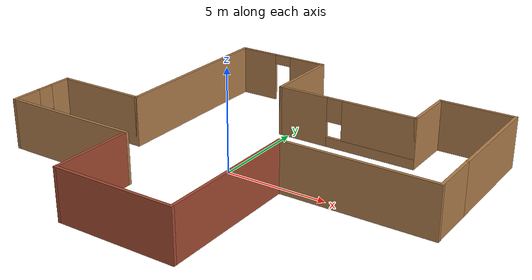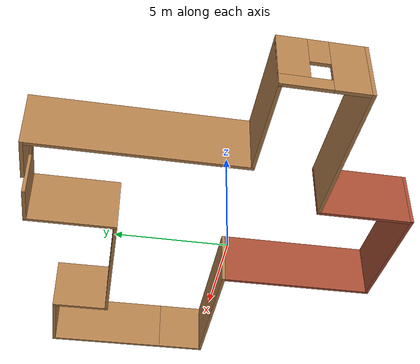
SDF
<?xml version='1.0'?>
<sdf version='1.7'>
  <model name='world'>
    <pose>0.23497 0.698898 0 0 -0 0</pose>
    <link name='Wall_10'>
      <collision name='Wall_10_Collision'>
        <geometry>
          <box>
            <size>2.75 0.15 2.5</size>
          </box>
        </geometry>
        <pose>0 0 1.25 0 -0 0</pose>
      </collision>
      <visual name='Wall_10_Visual'>
        <pose>0 0 1.25 0 -0 0</pose>
        <geometry>
          <box>
            <size>2.75 0.15 2.5</size>
          </box>
        </geometry>
        <material>
          <script>
            <uri>file://media/materials/scripts/gazebo.material</uri>
            <name>Gazebo/Wood</name>
          </script>
          <ambient>1 1 1 1</ambient>
        </material>
        <meta>
          <layer>0</layer>
        </meta>
      </visual>
      <pose>6.425 5.6 0 0 -0 1.5708</pose>
    </link>
    <link name='Wall_11'>
      <collision name='Wall_11_Collision'>
        <geometry>
          <box>
            <size>3.75 0.15 2.5</size>
          </box>
        </geometry>
        <pose>0 0 1.25 0 -0 0</pose>
      </collision>
      <visual name='Wall_11_Visual'>
        <pose>0 0 1.25 0 -0 0</pose>
        <geometry>
          <box>
            <size>3.75 0.15 2.5</size>
          </box>
        </geometry>
        <material>
          <script>
            <uri>file://media/materials/scripts/gazebo.material</uri>
            <name>Gazebo/Wood</name>
          </script>
          <ambient>1 1 1 1</ambient>
        </material>
        <meta>
          <layer>0</layer>
        </meta>
      </visual>
      <pose>8.225 6.9 0 0 -0 0</pose>
    </link>
    <link name='Wall_12'>
      <collision name='Wall_12_Collision'>
        <geometry>
          <box>
            <size>5.75 0.15 2.5</size>
          </box>
        </geometry>
        <pose>0 0 1.25 0 -0 0</pose>
      </collision>
      <visual name='Wall_12_Visual'>
        <pose>0 0 1.25 0 -0 0</pose>
        <geometry>
          <box>
            <size>5.75 0.15 2.5</size>
          </box>
        </geometry>
        <material>
          <script>
            <uri>file://media/materials/scripts/gazebo.material</uri>
            <name>Gazebo/Wood</name>
          </script>
          <ambient>1 1 1 1</ambient>
        </material>
        <meta>
          <layer>0</layer>
        </meta>
      </visual>
      <pose>10.025 4.1 0 0 -0 -1.5708</pose>
    </link>
    <link name='Wall_13'>
      <collision name='Wall_13_Collision'>
        <geometry>
          <box>
            <size>2.5 0.15 2.5</size>
          </box>
        </geometry>
        <pose>0 0 1.25 0 -0 0</pose>
      </collision>
      <visual name='Wall_13_Visual'>
        <pose>0 0 1.25 0 -0 0</pose>
        <geometry>
          <box>
            <size>2.5 0.15 2.5</size>
          </box>
        </geometry>
        <material>
          <script>
            <uri>file://media/materials/scripts/gazebo.material</uri>
            <name>Gazebo/Wood</name>
          </script>
          <ambient>1 1 1 1</ambient>
        </material>
        <meta>
          <layer>0</layer>
        </meta>
      </visual>
      <pose>10.025 0.125 0 0 -0 -1.5708</pose>
    </link>
    <link name='Wall_14'>
      <collision name='Wall_14_Collision'>
        <geometry>
          <box>
            <size>7.5 0.15 2.5</size>
          </box>
        </geometry>
        <pose>0 0 1.25 0 -0 0</pose>
      </collision>
      <visual name='Wall_14_Visual'>
        <pose>0 0 1.25 0 -0 0</pose>
        <geometry>
          <box>
            <size>7.5 0.15 2.5</size>
          </box>
        </geometry>
        <material>
          <script>
            <uri>file://media/materials/scripts/gazebo.material</uri>
            <name>Gazebo/Wood</name>
          </script>
          <ambient>1 1 1 1</ambient>
        </material>
        <meta>
          <layer>0</layer>
        </meta>
      </visual>
      <pose>6.35 -1.05 0 0 -0 3.14159</pose>
    </link>
    <link name='Wall_15'>
      <collision name='Wall_15_Collision'>
        <geometry>
          <box>
            <size>7.25 0.15 2.5</size>
          </box>
        </geometry>
        <pose>0 0 1.25 0 -0 0</pose>
      </collision>
      <visual name='Wall_15_Visual'>
        <pose>0 0 1.25 0 -0 0</pose>
        <geometry>
          <box>
            <size>7.25 0.15 2.5</size>
          </box>
        </geometry>
        <material>
          <script>
            <uri>file://media/materials/scripts/gazebo.material</uri>
            <name>Gazebo/Bricks</name>
          </script>
          <ambient>1 1 1 1</ambient>
        </material>
        <meta>
          <layer>0</layer>
        </meta>
      </visual>
      <pose>2.675 -4.6 0 0 -0 -1.5708</pose>
    </link>
    <link name='Wall_16'>
      <collision name='Wall_16_Collision'>
        <geometry>
          <box>
            <size>6 0.15 2.5</size>
          </box>
        </geometry>
        <pose>0 0 1.25 0 -0 0</pose>
      </collision>
      <visual name='Wall_16_Visual'>
        <pose>0 0 1.25 0 -0 0</pose>
        <geometry>
          <box>
            <size>6 0.15 2.5</size>
          </box>
        </geometry>
        <material>
          <script>
            <uri>file://media/materials/scripts/gazebo.material</uri>
            <name>Gazebo/Bricks</name>
          </script>
          <ambient>1 1 1 1</ambient>
        </material>
        <meta>
          <layer>0</layer>
        </meta>
      </visual>
      <pose>-0.250001 -8.15 0 0 -0 3.14159</pose>
    </link>
    <link name='Wall_17'>
      <collision name='Wall_17_Collision'>
        <geometry>
          <box>
            <size>4.25 0.15 2.5</size>
          </box>
        </geometry>
        <pose>0 0 1.25 0 -0 0</pose>
      </collision>
      <visual name='Wall_17_Visual'>
        <pose>0 0 1.25 0 -0 0</pose>
        <geometry>
          <box>
            <size>4.25 0.15 2.5</size>
          </box>
        </geometry>
        <material>
          <script>
            <uri>file://media/materials/scripts/gazebo.material</uri>
            <name>Gazebo/Bricks</name>
          </script>
          <ambient>1 1 1 1</ambient>
        </material>
        <meta>
          <layer>0</layer>
        </meta>
      </visual>
      <pose>-3.175 -6.1 0 0 -0 1.5708</pose>
    </link>
    <link name='Wall_18'>
      <collision name='Wall_18_Collision'>
        <geometry>
          <box>
            <size>7 0.15 2.5</size>
          </box>
        </geometry>
        <pose>0 0 1.25 0 -0 0</pose>
      </collision>
      <visual name='Wall_18_Visual'>
        <pose>0 0 1.25 0 -0 0</pose>
        <geometry>
          <box>
            <size>7 0.15 2.5</size>
          </box>
        </geometry>
        <material>
          <script>
            <uri>file://media/materials/scripts/gazebo.material</uri>
            <name>Gazebo/Wood</name>
          </script>
          <ambient>1 1 1 1</ambient>
        </material>
        <meta>
          <layer>0</layer>
        </meta>
      </visual>
      <pose>-6.6 -4.05 0 0 -0 3.14159</pose>
    </link>
    <link name='Wall_19'>
      <pose>-10.025 -2.375 0 0 -0 1.5708</pose>
      <visual name='Wall_19_Visual_0'>
        <pose>-0.991171 0 1.25 0 -0 0</pose>
        <geometry>
          <box>
            <size>1.51766 0.15 2.5</size>
          </box>
        </geometry>
        <material>
          <script>
            <uri>file://media/materials/scripts/gazebo.material</uri>
            <name>Gazebo/Wood</name>
          </script>
          <ambient>1 1 1 1</ambient>
        </material>
        <meta>
          <layer>0</layer>
        </meta>
      </visual>
      <collision name='Wall_19_Collision_0'>
        <geometry>
          <box>
            <size>1.51766 0.15 2.5</size>
          </box>
        </geometry>
        <pose>-0.991171 0 1.25 0 -0 0</pose>
      </collision>
      <visual name='Wall_19_Visual_1'>
        <pose>0.758829 0 0.25 0 -0 0</pose>
        <geometry>
          <box>
            <size>1.98234 0.15 0.5</size>
          </box>
        </geometry>
        <material>
          <script>
            <uri>file://media/materials/scripts/gazebo.material</uri>
            <name>Gazebo/Wood</name>
          </script>
          <ambient>1 1 1 1</ambient>
        </material>
        <meta>
          <layer>0</layer>
        </meta>
      </visual>
      <collision name='Wall_19_Collision_1'>
        <geometry>
          <box>
            <size>1.98234 0.15 0.5</size>
          </box>
        </geometry>
        <pose>0.758829 0 0.25 0 -0 0</pose>
      </collision>
      <visual name='Wall_19_Visual_2'>
        <pose>1.15883 0 1.5 0 -0 0</pose>
        <geometry>
          <box>
            <size>1.18234 0.15 2</size>
          </box>
        </geometry>
        <material>
          <script>
            <uri>file://media/materials/scripts/gazebo.material</uri>
            <name>Gazebo/Wood</name>
          </script>
          <ambient>1 1 1 1</ambient>
        </material>
        <meta>
          <layer>0</layer>
        </meta>
      </visual>
      <collision name='Wall_19_Collision_2'>
        <geometry>
          <box>
            <size>1.18234 0.15 2</size>
          </box>
        </geometry>
        <pose>1.15883 0 1.5 0 -0 0</pose>
      </collision>
      <visual name='Wall_19_Visual_3'>
        <pose>0.167659 0 1.9 0 -0 0</pose>
        <geometry>
          <box>
            <size>0.8 0.15 1.2</size>
          </box>
        </geometry>
        <material>
          <script>
            <uri>file://media/materials/scripts/gazebo.material</uri>
            <name>Gazebo/Wood</name>
          </script>
          <ambient>1 1 1 1</ambient>
        </material>
        <meta>
          <layer>0</layer>
        </meta>
      </visual>
      <collision name='Wall_19_Collision_3'>
        <geometry>
          <box>
            <size>0.8 0.15 1.2</size>
          </box>
        </geometry>
        <pose>0.167659 0 1.9 0 -0 0</pose>
      </collision>
    </link>
    <link name='Wall_20'>
      <collision name='Wall_20_Collision'>
        <geometry>
          <box>
            <size>4.65 0.15 2.5</size>
          </box>
        </geometry>
        <pose>0 0 1.25 0 -0 0</pose>
      </collision>
      <visual name='Wall_20_Visual'>
        <pose>0 0 1.25 0 -0 0</pose>
        <geometry>
          <box>
            <size>4.65 0.15 2.5</size>
          </box>
        </geometry>
        <material>
          <script>
            <uri>file://media/materials/scripts/gazebo.material</uri>
            <name>Gazebo/Wood</name>
          </script>
          <ambient>1 1 1 1</ambient>
        </material>
        <meta>
          <layer>0</layer>
        </meta>
      </visual>
      <pose>-7.775 -0.7 0 0 -0 0</pose>
    </link>
    <link name='Wall_6'>
      <collision name='Wall_6_Collision'>
        <geometry>
          <box>
            <size>9 0.15 2.5</size>
          </box>
        </geometry>
        <pose>0 0 1.25 0 -0 0</pose>
      </collision>
      <visual name='Wall_6_Visual'>
        <pose>0 0 1.25 0 -0 0</pose>
        <geometry>
          <box>
            <size>9 0.15 2.5</size>
          </box>
        </geometry>
        <material>
          <script>
            <uri>file://media/materials/scripts/gazebo.material</uri>
            <name>Gazebo/Wood</name>
          </script>
          <ambient>1 1 1 1</ambient>
        </material>
        <meta>
          <layer>0</layer>
        </meta>
      </visual>
      <pose>-5.525 3.725 0 0 -0 1.5708</pose>
    </link>
    <link name='Wall_7'>
      <pose>-3.1 8.15 0 0 -0 0</pose>
      <visual name='Wall_7_Visual_0'>
        <pose>-1.44697 0 1.25 0 -0 0</pose>
        <geometry>
          <box>
            <size>2.10606 0.15 2.5</size>
          </box>
        </geometry>
        <material>
          <script>
            <uri>file://media/materials/scripts/gazebo.material</uri>
            <name>Gazebo/Wood</name>
          </script>
          <ambient>1 1 1 1</ambient>
        </material>
        <meta>
          <layer>0</layer>
        </meta>
      </visual>
      <collision name='Wall_7_Collision_0'>
        <geometry>
          <box>
            <size>2.10606 0.15 2.5</size>
          </box>
        </geometry>
        <pose>-1.44697 0 1.25 0 -0 0</pose>
      </collision>
      <visual name='Wall_7_Visual_1'>
        <pose>1.50303 0 1.25 0 -0 0</pose>
        <geometry>
          <box>
            <size>1.99394 0.15 2.5</size>
          </box>
        </geometry>
        <material>
          <script>
            <uri>file://media/materials/scripts/gazebo.material</uri>
            <name>Gazebo/Wood</name>
          </script>
          <ambient>1 1 1 1</ambient>
        </material>
        <meta>
          <layer>0</layer>
        </meta>
      </visual>
      <collision name='Wall_7_Collision_1'>
        <geometry>
          <box>
            <size>1.99394 0.15 2.5</size>
          </box>
        </geometry>
        <pose>1.50303 0 1.25 0 -0 0</pose>
      </collision>
      <visual name='Wall_7_Visual_2'>
        <pose>0.056064 0 2.25 0 -0 0</pose>
        <geometry>
          <box>
            <size>0.9 0.15 0.5</size>
          </box>
        </geometry>
        <material>
          <script>
            <uri>file://media/materials/scripts/gazebo.material</uri>
            <name>Gazebo/Wood</name>
          </script>
          <ambient>1 1 1 1</ambient>
        </material>
        <meta>
          <layer>0</layer>
        </meta>
      </visual>
      <collision name='Wall_7_Collision_2'>
        <geometry>
          <box>
            <size>0.9 0.15 0.5</size>
          </box>
        </geometry>
        <pose>0.056064 0 2.25 0 -0 0</pose>
      </collision>
    </link>
    <link name='Wall_8'>
      <collision name='Wall_8_Collision'>
        <geometry>
          <box>
            <size>4 0.15 2.5</size>
          </box>
        </geometry>
        <pose>0 0 1.25 0 -0 0</pose>
      </collision>
      <visual name='Wall_8_Visual'>
        <pose>0 0 1.25 0 -0 0</pose>
        <geometry>
          <box>
            <size>4 0.15 2.5</size>
          </box>
        </geometry>
        <material>
          <script>
            <uri>file://media/materials/scripts/gazebo.material</uri>
            <name>Gazebo/Wood</name>
          </script>
          <ambient>1 1 1 1</ambient>
        </material>
        <meta>
          <layer>0</layer>
        </meta>
      </visual>
      <pose>-0.675001 6.225 0 0 -0 -1.5708</pose>
    </link>
    <link name='Wall_9'>
      <pose>2.875 4.3 0 0 -0 0</pose>
      <visual name='Wall_9_Visual_0'>
        <pose>-2.29684 0 1.25 0 -0 0</pose>
        <geometry>
          <box>
            <size>2.65632 0.15 2.5</size>
          </box>
        </geometry>
        <material>
          <script>
            <uri>file://media/materials/scripts/gazebo.material</uri>
            <name>Gazebo/Wood</name>
          </script>
          <ambient>1 1 1 1</ambient>
        </material>
        <meta>
          <layer>0</layer>
        </meta>
      </visual>
      <collision name='Wall_9_Collision_0'>
        <geometry>
          <box>
            <size>2.65632 0.15 2.5</size>
          </box>
        </geometry>
        <pose>-2.29684 0 1.25 0 -0 0</pose>
      </collision>
      <visual name='Wall_9_Visual_1'>
        <pose>1.32816 0 0.25 0 -0 0</pose>
        <geometry>
          <box>
            <size>4.59368 0.15 0.5</size>
          </box>
        </geometry>
        <material>
          <script>
            <uri>file://media/materials/scripts/gazebo.material</uri>
            <name>Gazebo/Wood</name>
          </script>
          <ambient>1 1 1 1</ambient>
        </material>
        <meta>
          <layer>0</layer>
        </meta>
      </visual>
      <collision name='Wall_9_Collision_1'>
        <geometry>
          <box>
            <size>4.59368 0.15 0.5</size>
          </box>
        </geometry>
        <pose>1.32816 0 0.25 0 -0 0</pose>
      </collision>
      <visual name='Wall_9_Visual_2'>
        <pose>1.72816 0 1.5 0 -0 0</pose>
        <geometry>
          <box>
            <size>3.79368 0.15 2</size>
          </box>
        </geometry>
        <material>
          <script>
            <uri>file://media/materials/scripts/gazebo.material</uri>
            <name>Gazebo/Wood</name>
          </script>
          <ambient>1 1 1 1</ambient>
        </material>
        <meta>
          <layer>0</layer>
        </meta>
      </visual>
      <collision name='Wall_9_Collision_2'>
        <geometry>
          <box>
            <size>3.79368 0.15 2</size>
          </box>
        </geometry>
        <pose>1.72816 0 1.5 0 -0 0</pose>
      </collision>
      <visual name='Wall_9_Visual_3'>
        <pose>-0.568685 0 1.9 0 -0 0</pose>
        <geometry>
          <box>
            <size>0.8 0.15 1.2</size>
          </box>
        </geometry>
        <material>
          <script>
            <uri>file://media/materials/scripts/gazebo.material</uri>
            <name>Gazebo/Wood</name>
          </script>
          <ambient>1 1 1 1</ambient>
        </material>
        <meta>
          <layer>0</layer>
        </meta>
      </visual>
      <collision name='Wall_9_Collision_3'>
        <geometry>
          <box>
            <size>0.8 0.15 1.2</size>
          </box>
        </geometry>
        <pose>-0.568685 0 1.9 0 -0 0</pose>
      </collision>
    </link>
    <static>1</static>
  </model>
</sdf>
